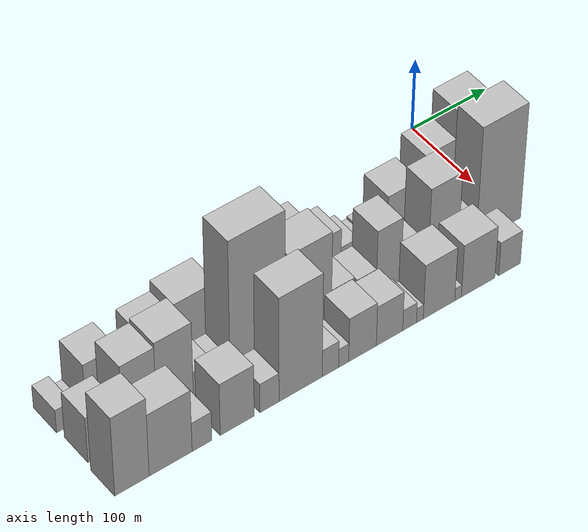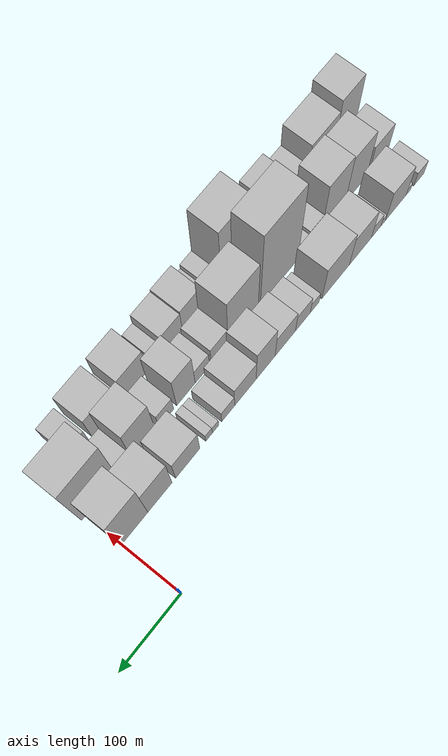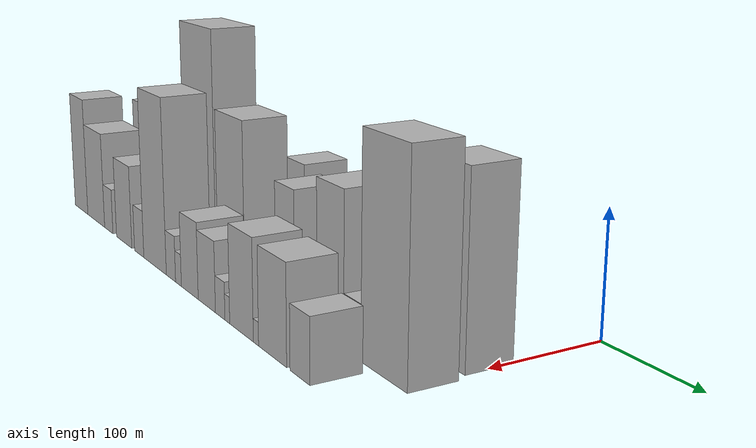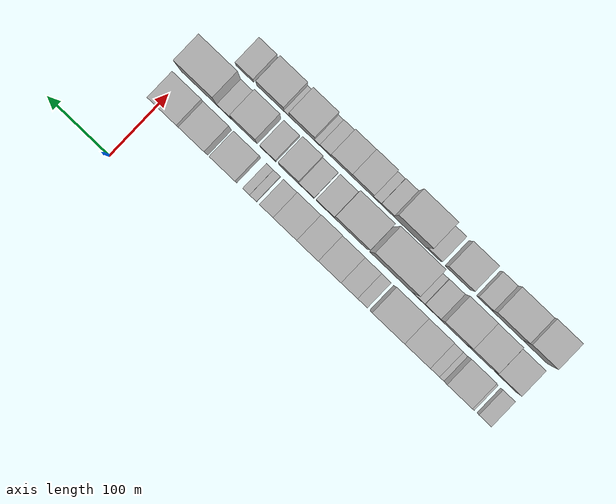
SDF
<sdf version="1.6">
 <world name="default">
  <model name="building_1">
   <static>1</static>
   <pose>100.0000 -526.1219 0 0.000000 0.000000 0.000000</pose>
   <link name="link">
    <pose>0 0 16.50 0 0 0</pose>
    <collision name="collision"><geometry><box><size>40.0000 19.7561 33.0000</size></box></geometry></collision>
    <visual name="visual">
     <cast_shadows>0</cast_shadows>
     <geometry><box><size>40.0000 19.7561 33.0000</size></box></geometry>
     <material>
      <script>
       <uri>model://HANNAS_wall/materials/scripts</uri>
       <uri>model://HANNAS_wall/materials/textures</uri>
       <name>vrc/HANNAS_wall</name>
      </script>
     </material>
    </visual>
   </link>
  </model>
  <model name="building_2">
   <static>1</static>
   <pose>100.0000 -505.8128 0 0.000000 0.000000 0.000000</pose>
   <link name="link">
    <pose>0 0 9.00 0 0 0</pose>
    <collision name="collision"><geometry><box><size>40.0000 8.8621 18.0000</size></box></geometry></collision>
    <visual name="visual">
     <cast_shadows>0</cast_shadows>
     <geometry><box><size>40.0000 8.8621 18.0000</size></box></geometry>
     <material>
      <script>
       <uri>model://HANNAS_wall/materials/scripts</uri>
       <uri>model://HANNAS_wall/materials/textures</uri>
       <name>vrc/HANNAS_wall</name>
      </script>
     </material>
    </visual>
   </link>
  </model>
  <model name="building_3">
   <static>1</static>
   <pose>100.0000 -481.4801 0 0.000000 0.000000 0.000000</pose>
   <link name="link">
    <pose>0 0 37.50 0 0 0</pose>
    <collision name="collision"><geometry><box><size>40.0000 39.8033 75.0000</size></box></geometry></collision>
    <visual name="visual">
     <cast_shadows>0</cast_shadows>
     <geometry><box><size>40.0000 39.8033 75.0000</size></box></geometry>
     <material>
      <script>
       <uri>model://HANNAS_wall/materials/scripts</uri>
       <uri>model://HANNAS_wall/materials/textures</uri>
       <name>vrc/HANNAS_wall</name>
      </script>
     </material>
    </visual>
   </link>
  </model>
  <model name="building_4">
   <static>1</static>
   <pose>100.0000 -457.4161 0 0.000000 0.000000 0.000000</pose>
   <link name="link">
    <pose>0 0 9.00 0 0 0</pose>
    <collision name="collision"><geometry><box><size>40.0000 8.3246 18.0000</size></box></geometry></collision>
    <visual name="visual">
     <cast_shadows>0</cast_shadows>
     <geometry><box><size>40.0000 8.3246 18.0000</size></box></geometry>
     <material>
      <script>
       <uri>model://HANNAS_wall/materials/scripts</uri>
       <uri>model://HANNAS_wall/materials/textures</uri>
       <name>vrc/HANNAS_wall</name>
      </script>
     </material>
    </visual>
   </link>
  </model>
  <model name="building_5">
   <static>1</static>
   <pose>100.0000 -444.1936 0 0.000000 0.000000 0.000000</pose>
   <link name="link">
    <pose>0 0 16.50 0 0 0</pose>
    <collision name="collision"><geometry><box><size>40.0000 18.1203 33.0000</size></box></geometry></collision>
    <visual name="visual">
     <cast_shadows>0</cast_shadows>
     <geometry><box><size>40.0000 18.1203 33.0000</size></box></geometry>
     <material>
      <script>
       <uri>model://HANNAS_wall/materials/scripts</uri>
       <uri>model://HANNAS_wall/materials/textures</uri>
       <name>vrc/HANNAS_wall</name>
      </script>
     </material>
    </visual>
   </link>
  </model>
  <model name="building_6">
   <static>1</static>
   <pose>100.0000 -414.6209 0 0.000000 0.000000 0.000000</pose>
   <link name="link">
    <pose>0 0 37.50 0 0 0</pose>
    <collision name="collision"><geometry><box><size>40.0000 41.0252 75.0000</size></box></geometry></collision>
    <visual name="visual">
     <cast_shadows>0</cast_shadows>
     <geometry><box><size>40.0000 41.0252 75.0000</size></box></geometry>
     <material>
      <script>
       <uri>model://HANNAS_wall/materials/scripts</uri>
       <uri>model://HANNAS_wall/materials/textures</uri>
       <name>vrc/HANNAS_wall</name>
      </script>
     </material>
    </visual>
   </link>
  </model>
  <model name="building_7">
   <static>1</static>
   <pose>100.0000 -368.7851 0 0.000000 0.000000 0.000000</pose>
   <link name="link">
    <pose>0 0 45.00 0 0 0</pose>
    <collision name="collision"><geometry><box><size>40.0000 50.6465 90.0000</size></box></geometry></collision>
    <visual name="visual">
     <cast_shadows>0</cast_shadows>
     <geometry><box><size>40.0000 50.6465 90.0000</size></box></geometry>
     <material>
      <script>
       <uri>model://HANNAS_wall/materials/scripts</uri>
       <uri>model://HANNAS_wall/materials/textures</uri>
       <name>vrc/HANNAS_wall</name>
      </script>
     </material>
    </visual>
   </link>
  </model>
  <model name="building_8">
   <static>1</static>
   <pose>100.0000 -330.3271 0 0.000000 0.000000 0.000000</pose>
   <link name="link">
    <pose>0 0 15.00 0 0 0</pose>
    <collision name="collision"><geometry><box><size>40.0000 16.2695 30.0000</size></box></geometry></collision>
    <visual name="visual">
     <cast_shadows>0</cast_shadows>
     <geometry><box><size>40.0000 16.2695 30.0000</size></box></geometry>
     <material>
      <script>
       <uri>model://HANNAS_wall/materials/scripts</uri>
       <uri>model://HANNAS_wall/materials/textures</uri>
       <name>vrc/HANNAS_wall</name>
      </script>
     </material>
    </visual>
   </link>
  </model>
  <model name="building_9">
   <static>1</static>
   <pose>100.0000 -308.9415 0 0.000000 0.000000 0.000000</pose>
   <link name="link">
    <pose>0 0 25.50 0 0 0</pose>
    <collision name="collision"><geometry><box><size>40.0000 26.5016 51.0000</size></box></geometry></collision>
    <visual name="visual">
     <cast_shadows>0</cast_shadows>
     <geometry><box><size>40.0000 26.5016 51.0000</size></box></geometry>
     <material>
      <script>
       <uri>model://HANNAS_wall/materials/scripts</uri>
       <uri>model://HANNAS_wall/materials/textures</uri>
       <name>vrc/HANNAS_wall</name>
      </script>
     </material>
    </visual>
   </link>
  </model>
  <model name="building_10">
   <static>1</static>
   <pose>100.0000 -277.5802 0 0.000000 0.000000 0.000000</pose>
   <link name="link">
    <pose>0 0 31.50 0 0 0</pose>
    <collision name="collision"><geometry><box><size>40.0000 36.2212 63.0000</size></box></geometry></collision>
    <visual name="visual">
     <cast_shadows>0</cast_shadows>
     <geometry><box><size>40.0000 36.2212 63.0000</size></box></geometry>
     <material>
      <script>
       <uri>model://HANNAS_wall/materials/scripts</uri>
       <uri>model://HANNAS_wall/materials/textures</uri>
       <name>vrc/HANNAS_wall</name>
      </script>
     </material>
    </visual>
   </link>
  </model>
  <model name="building_11">
   <static>1</static>
   <pose>100.0000 -242.7099 0 0.000000 0.000000 0.000000</pose>
   <link name="link">
    <pose>0 0 48.00 0 0 0</pose>
    <collision name="collision"><geometry><box><size>40.0000 33.5194 96.0000</size></box></geometry></collision>
    <visual name="visual">
     <cast_shadows>0</cast_shadows>
     <geometry><box><size>40.0000 33.5194 96.0000</size></box></geometry>
     <material>
      <script>
       <uri>model://HANNAS_wall/materials/scripts</uri>
       <uri>model://HANNAS_wall/materials/textures</uri>
       <name>vrc/HANNAS_wall</name>
      </script>
     </material>
    </visual>
   </link>
  </model>
  <model name="building_12">
   <static>1</static>
   <pose>100.0000 -207.3057 0 0.000000 0.000000 0.000000</pose>
   <link name="link">
    <pose>0 0 33.00 0 0 0</pose>
    <collision name="collision"><geometry><box><size>40.0000 37.2890 66.0000</size></box></geometry></collision>
    <visual name="visual">
     <cast_shadows>0</cast_shadows>
     <geometry><box><size>40.0000 37.2890 66.0000</size></box></geometry>
     <material>
      <script>
       <uri>model://HANNAS_wall/materials/scripts</uri>
       <uri>model://HANNAS_wall/materials/textures</uri>
       <name>vrc/HANNAS_wall</name>
      </script>
     </material>
    </visual>
   </link>
  </model>
  <model name="building_13">
   <static>1</static>
   <pose>100.0000 -177.5530 0 0.000000 0.000000 0.000000</pose>
   <link name="link">
    <pose>0 0 19.50 0 0 0</pose>
    <collision name="collision"><geometry><box><size>40.0000 22.2164 39.0000</size></box></geometry></collision>
    <visual name="visual">
     <cast_shadows>0</cast_shadows>
     <geometry><box><size>40.0000 22.2164 39.0000</size></box></geometry>
     <material>
      <script>
       <uri>model://HANNAS_wall/materials/scripts</uri>
       <uri>model://HANNAS_wall/materials/textures</uri>
       <name>vrc/HANNAS_wall</name>
      </script>
     </material>
    </visual>
   </link>
  </model>
  <model name="building_14">
   <static>1</static>
   <pose>100.0000 -155.9474 0 0.000000 0.000000 0.000000</pose>
   <link name="link">
    <pose>0 0 12.00 0 0 0</pose>
    <collision name="collision"><geometry><box><size>40.0000 10.9948 24.0000</size></box></geometry></collision>
    <visual name="visual">
     <cast_shadows>0</cast_shadows>
     <geometry><box><size>40.0000 10.9948 24.0000</size></box></geometry>
     <material>
      <script>
       <uri>model://HANNAS_wall/materials/scripts</uri>
       <uri>model://HANNAS_wall/materials/textures</uri>
       <name>vrc/HANNAS_wall</name>
      </script>
     </material>
    </visual>
   </link>
  </model>
  <model name="building_15">
   <static>1</static>
   <pose>100.0000 -144.8845 0 0.000000 0.000000 0.000000</pose>
   <link name="link">
    <pose>0 0 13.50 0 0 0</pose>
    <collision name="collision"><geometry><box><size>40.0000 11.1311 27.0000</size></box></geometry></collision>
    <visual name="visual">
     <cast_shadows>0</cast_shadows>
     <geometry><box><size>40.0000 11.1311 27.0000</size></box></geometry>
     <material>
      <script>
       <uri>model://HANNAS_wall/materials/scripts</uri>
       <uri>model://HANNAS_wall/materials/textures</uri>
       <name>vrc/HANNAS_wall</name>
      </script>
     </material>
    </visual>
   </link>
  </model>
  <model name="building_16">
   <static>1</static>
   <pose>100.0000 -108.9709 0 0.000000 0.000000 0.000000</pose>
   <link name="link">
    <pose>0 0 37.50 0 0 0</pose>
    <collision name="collision"><geometry><box><size>40.0000 40.6960 75.0000</size></box></geometry></collision>
    <visual name="visual">
     <cast_shadows>0</cast_shadows>
     <geometry><box><size>40.0000 40.6960 75.0000</size></box></geometry>
     <material>
      <script>
       <uri>model://HANNAS_wall/materials/scripts</uri>
       <uri>model://HANNAS_wall/materials/textures</uri>
       <name>vrc/HANNAS_wall</name>
      </script>
     </material>
    </visual>
   </link>
  </model>
  <model name="building_17">
   <static>1</static>
   <pose>100.0000 -62.7617 0 0.000000 0.000000 0.000000</pose>
   <link name="link">
    <pose>0 0 52.50 0 0 0</pose>
    <collision name="collision"><geometry><box><size>40.0000 39.7224 105.0000</size></box></geometry></collision>
    <visual name="visual">
     <cast_shadows>0</cast_shadows>
     <geometry><box><size>40.0000 39.7224 105.0000</size></box></geometry>
     <material>
      <script>
       <uri>model://HANNAS_wall/materials/scripts</uri>
       <uri>model://HANNAS_wall/materials/textures</uri>
       <name>vrc/HANNAS_wall</name>
      </script>
     </material>
    </visual>
   </link>
  </model>
  <model name="building_18">
   <static>1</static>
   <pose>100.0000 -20.6462 0 0.000000 0.000000 0.000000</pose>
   <link name="link">
    <pose>0 0 72.00 0 0 0</pose>
    <collision name="collision"><geometry><box><size>40.0000 44.5086 144.0000</size></box></geometry></collision>
    <visual name="visual">
     <cast_shadows>0</cast_shadows>
     <geometry><box><size>40.0000 44.5086 144.0000</size></box></geometry>
     <material>
      <script>
       <uri>model://HANNAS_wall/materials/scripts</uri>
       <uri>model://HANNAS_wall/materials/textures</uri>
       <name>vrc/HANNAS_wall</name>
      </script>
     </material>
    </visual>
   </link>
  </model>
  <model name="building_34">
   <static>1</static>
   <pose>149.0000 -514.7943 0 0.000000 0.000000 0.000000</pose>
   <link name="link">
    <pose>0 0 33.00 0 0 0</pose>
    <collision name="collision"><geometry><box><size>40.0000 36.4115 66.0000</size></box></geometry></collision>
    <visual name="visual">
     <cast_shadows>0</cast_shadows>
     <geometry><box><size>40.0000 36.4115 66.0000</size></box></geometry>
     <material>
      <script>
       <uri>model://HANNAS_wall/materials/scripts</uri>
       <uri>model://HANNAS_wall/materials/textures</uri>
       <name>vrc/HANNAS_wall</name>
      </script>
     </material>
    </visual>
   </link>
  </model>
  <model name="building_35">
   <static>1</static>
   <pose>149.0000 -471.6431 0 0.000000 0.000000 0.000000</pose>
   <link name="link">
    <pose>0 0 55.50 0 0 0</pose>
    <collision name="collision"><geometry><box><size>40.0000 39.8908 111.0000</size></box></geometry></collision>
    <visual name="visual">
     <cast_shadows>0</cast_shadows>
     <geometry><box><size>40.0000 39.8908 111.0000</size></box></geometry>
     <material>
      <script>
       <uri>model://HANNAS_wall/materials/scripts</uri>
       <uri>model://HANNAS_wall/materials/textures</uri>
       <name>vrc/HANNAS_wall</name>
      </script>
     </material>
    </visual>
   </link>
  </model>
  <model name="building_36">
   <static>1</static>
   <pose>149.0000 -429.7863 0 0.000000 0.000000 0.000000</pose>
   <link name="link">
    <pose>0 0 58.50 0 0 0</pose>
    <collision name="collision"><geometry><box><size>40.0000 43.8228 117.0000</size></box></geometry></collision>
    <visual name="visual">
     <cast_shadows>0</cast_shadows>
     <geometry><box><size>40.0000 43.8228 117.0000</size></box></geometry>
     <material>
      <script>
       <uri>model://HANNAS_wall/materials/scripts</uri>
       <uri>model://HANNAS_wall/materials/textures</uri>
       <name>vrc/HANNAS_wall</name>
      </script>
     </material>
    </visual>
   </link>
  </model>
  <model name="building_37">
   <static>1</static>
   <pose>149.0000 -395.3865 0 0.000000 0.000000 0.000000</pose>
   <link name="link">
    <pose>0 0 22.50 0 0 0</pose>
    <collision name="collision"><geometry><box><size>40.0000 24.9768 45.0000</size></box></geometry></collision>
    <visual name="visual">
     <cast_shadows>0</cast_shadows>
     <geometry><box><size>40.0000 24.9768 45.0000</size></box></geometry>
     <material>
      <script>
       <uri>model://HANNAS_wall/materials/scripts</uri>
       <uri>model://HANNAS_wall/materials/textures</uri>
       <name>vrc/HANNAS_wall</name>
      </script>
     </material>
    </visual>
   </link>
  </model>
  <model name="building_38">
   <static>1</static>
   <pose>149.0000 -373.2390 0 0.000000 0.000000 0.000000</pose>
   <link name="link">
    <pose>0 0 18.00 0 0 0</pose>
    <collision name="collision"><geometry><box><size>40.0000 19.3182 36.0000</size></box></geometry></collision>
    <visual name="visual">
     <cast_shadows>0</cast_shadows>
     <geometry><box><size>40.0000 19.3182 36.0000</size></box></geometry>
     <material>
      <script>
       <uri>model://HANNAS_wall/materials/scripts</uri>
       <uri>model://HANNAS_wall/materials/textures</uri>
       <name>vrc/HANNAS_wall</name>
      </script>
     </material>
    </visual>
   </link>
  </model>
  <model name="building_39">
   <static>1</static>
   <pose>149.0000 -329.8349 0 0.000000 0.000000 0.000000</pose>
   <link name="link">
    <pose>0 0 100.50 0 0 0</pose>
    <collision name="collision"><geometry><box><size>40.0000 67.4900 201.0000</size></box></geometry></collision>
    <visual name="visual">
     <cast_shadows>0</cast_shadows>
     <geometry><box><size>40.0000 67.4900 201.0000</size></box></geometry>
     <material>
      <script>
       <uri>model://HANNAS_wall/materials/scripts</uri>
       <uri>model://HANNAS_wall/materials/textures</uri>
       <name>vrc/HANNAS_wall</name>
      </script>
     </material>
    </visual>
   </link>
  </model>
  <model name="building_40">
   <static>1</static>
   <pose>149.0000 -265.3873 0 0.000000 0.000000 0.000000</pose>
   <link name="link">
    <pose>0 0 67.50 0 0 0</pose>
    <collision name="collision"><geometry><box><size>40.0000 53.4052 135.0000</size></box></geometry></collision>
    <visual name="visual">
     <cast_shadows>0</cast_shadows>
     <geometry><box><size>40.0000 53.4052 135.0000</size></box></geometry>
     <material>
      <script>
       <uri>model://HANNAS_wall/materials/scripts</uri>
       <uri>model://HANNAS_wall/materials/textures</uri>
       <name>vrc/HANNAS_wall</name>
      </script>
     </material>
    </visual>
   </link>
  </model>
  <model name="building_41">
   <static>1</static>
   <pose>149.0000 -224.1973 0 0.000000 0.000000 0.000000</pose>
   <link name="link">
    <pose>0 0 25.50 0 0 0</pose>
    <collision name="collision"><geometry><box><size>40.0000 28.9750 51.0000</size></box></geometry></collision>
    <visual name="visual">
     <cast_shadows>0</cast_shadows>
     <geometry><box><size>40.0000 28.9750 51.0000</size></box></geometry>
     <material>
      <script>
       <uri>model://HANNAS_wall/materials/scripts</uri>
       <uri>model://HANNAS_wall/materials/textures</uri>
       <name>vrc/HANNAS_wall</name>
      </script>
     </material>
    </visual>
   </link>
  </model>
  <model name="building_42">
   <static>1</static>
   <pose>149.0000 -194.3258 0 0.000000 0.000000 0.000000</pose>
   <link name="link">
    <pose>0 0 22.50 0 0 0</pose>
    <collision name="collision"><geometry><box><size>40.0000 24.7681 45.0000</size></box></geometry></collision>
    <visual name="visual">
     <cast_shadows>0</cast_shadows>
     <geometry><box><size>40.0000 24.7681 45.0000</size></box></geometry>
     <material>
      <script>
       <uri>model://HANNAS_wall/materials/scripts</uri>
       <uri>model://HANNAS_wall/materials/textures</uri>
       <name>vrc/HANNAS_wall</name>
      </script>
     </material>
    </visual>
   </link>
  </model>
  <model name="building_43">
   <static>1</static>
   <pose>149.0000 -166.0738 0 0.000000 0.000000 0.000000</pose>
   <link name="link">
    <pose>0 0 49.50 0 0 0</pose>
    <collision name="collision"><geometry><box><size>40.0000 31.7359 99.0000</size></box></geometry></collision>
    <visual name="visual">
     <cast_shadows>0</cast_shadows>
     <geometry><box><size>40.0000 31.7359 99.0000</size></box></geometry>
     <material>
      <script>
       <uri>model://HANNAS_wall/materials/scripts</uri>
       <uri>model://HANNAS_wall/materials/textures</uri>
       <name>vrc/HANNAS_wall</name>
      </script>
     </material>
    </visual>
   </link>
  </model>
  <model name="building_44">
   <static>1</static>
   <pose>149.0000 -132.6454 0 0.000000 0.000000 0.000000</pose>
   <link name="link">
    <pose>0 0 24.00 0 0 0</pose>
    <collision name="collision"><geometry><box><size>40.0000 25.1210 48.0000</size></box></geometry></collision>
    <visual name="visual">
     <cast_shadows>0</cast_shadows>
     <geometry><box><size>40.0000 25.1210 48.0000</size></box></geometry>
     <material>
      <script>
       <uri>model://HANNAS_wall/materials/scripts</uri>
       <uri>model://HANNAS_wall/materials/textures</uri>
       <name>vrc/HANNAS_wall</name>
      </script>
     </material>
    </visual>
   </link>
  </model>
  <model name="building_45">
   <static>1</static>
   <pose>149.0000 -95.3464 0 0.000000 0.000000 0.000000</pose>
   <link name="link">
    <pose>0 0 58.50 0 0 0</pose>
    <collision name="collision"><geometry><box><size>40.0000 39.4770 117.0000</size></box></geometry></collision>
    <visual name="visual">
     <cast_shadows>0</cast_shadows>
     <geometry><box><size>40.0000 39.4770 117.0000</size></box></geometry>
     <material>
      <script>
       <uri>model://HANNAS_wall/materials/scripts</uri>
       <uri>model://HANNAS_wall/materials/textures</uri>
       <name>vrc/HANNAS_wall</name>
      </script>
     </material>
    </visual>
   </link>
  </model>
  <model name="building_46">
   <static>1</static>
   <pose>149.0000 -63.7286 0 0.000000 0.000000 0.000000</pose>
   <link name="link">
    <pose>0 0 21.00 0 0 0</pose>
    <collision name="collision"><geometry><box><size>40.0000 23.7586 42.0000</size></box></geometry></collision>
    <visual name="visual">
     <cast_shadows>0</cast_shadows>
     <geometry><box><size>40.0000 23.7586 42.0000</size></box></geometry>
     <material>
      <script>
       <uri>model://HANNAS_wall/materials/scripts</uri>
       <uri>model://HANNAS_wall/materials/textures</uri>
       <name>vrc/HANNAS_wall</name>
      </script>
     </material>
    </visual>
   </link>
  </model>
  <model name="building_47">
   <static>1</static>
   <pose>149.0000 -22.4297 0 0.000000 0.000000 0.000000</pose>
   <link name="link">
    <pose>0 0 82.50 0 0 0</pose>
    <collision name="collision"><geometry><box><size>40.0000 58.8392 165.0000</size></box></geometry></collision>
    <visual name="visual">
     <cast_shadows>0</cast_shadows>
     <geometry><box><size>40.0000 58.8392 165.0000</size></box></geometry>
     <material>
      <script>
       <uri>model://HANNAS_wall/materials/scripts</uri>
       <uri>model://HANNAS_wall/materials/textures</uri>
       <name>vrc/HANNAS_wall</name>
      </script>
     </material>
    </visual>
   </link>
  </model>
  <model name="building_63">
   <static>1</static>
   <pose>198.0000 -515.8757 0 0.000000 0.000000 0.000000</pose>
   <link name="link">
    <pose>0 0 57.00 0 0 0</pose>
    <collision name="collision"><geometry><box><size>40.0000 40.2486 114.0000</size></box></geometry></collision>
    <visual name="visual">
     <cast_shadows>0</cast_shadows>
     <geometry><box><size>40.0000 40.2486 114.0000</size></box></geometry>
     <material>
      <script>
       <uri>model://HANNAS_wall/materials/scripts</uri>
       <uri>model://HANNAS_wall/materials/textures</uri>
       <name>vrc/HANNAS_wall</name>
      </script>
     </material>
    </visual>
   </link>
  </model>
  <model name="building_64">
   <static>1</static>
   <pose>198.0000 -470.4713 0 0.000000 0.000000 0.000000</pose>
   <link name="link">
    <pose>0 0 45.00 0 0 0</pose>
    <collision name="collision"><geometry><box><size>40.0000 50.5603 90.0000</size></box></geometry></collision>
    <visual name="visual">
     <cast_shadows>0</cast_shadows>
     <geometry><box><size>40.0000 50.5603 90.0000</size></box></geometry>
     <material>
      <script>
       <uri>model://HANNAS_wall/materials/scripts</uri>
       <uri>model://HANNAS_wall/materials/textures</uri>
       <name>vrc/HANNAS_wall</name>
      </script>
     </material>
    </visual>
   </link>
  </model>
  <model name="building_65">
   <static>1</static>
   <pose>198.0000 -433.4151 0 0.000000 0.000000 0.000000</pose>
   <link name="link">
    <pose>0 0 21.00 0 0 0</pose>
    <collision name="collision"><geometry><box><size>40.0000 23.5520 42.0000</size></box></geometry></collision>
    <visual name="visual">
     <cast_shadows>0</cast_shadows>
     <geometry><box><size>40.0000 23.5520 42.0000</size></box></geometry>
     <material>
      <script>
       <uri>model://HANNAS_wall/materials/scripts</uri>
       <uri>model://HANNAS_wall/materials/textures</uri>
       <name>vrc/HANNAS_wall</name>
      </script>
     </material>
    </visual>
   </link>
  </model>
  <model name="building_66">
   <static>1</static>
   <pose>198.0000 -391.2242 0 0.000000 0.000000 0.000000</pose>
   <link name="link">
    <pose>0 0 37.50 0 0 0</pose>
    <collision name="collision"><geometry><box><size>40.0000 40.8298 75.0000</size></box></geometry></collision>
    <visual name="visual">
     <cast_shadows>0</cast_shadows>
     <geometry><box><size>40.0000 40.8298 75.0000</size></box></geometry>
     <material>
      <script>
       <uri>model://HANNAS_wall/materials/scripts</uri>
       <uri>model://HANNAS_wall/materials/textures</uri>
       <name>vrc/HANNAS_wall</name>
      </script>
     </material>
    </visual>
   </link>
  </model>
  <model name="building_67">
   <static>1</static>
   <pose>198.0000 -352.2111 0 0.000000 0.000000 0.000000</pose>
   <link name="link">
    <pose>0 0 21.00 0 0 0</pose>
    <collision name="collision"><geometry><box><size>40.0000 23.1963 42.0000</size></box></geometry></collision>
    <visual name="visual">
     <cast_shadows>0</cast_shadows>
     <geometry><box><size>40.0000 23.1963 42.0000</size></box></geometry>
     <material>
      <script>
       <uri>model://HANNAS_wall/materials/scripts</uri>
       <uri>model://HANNAS_wall/materials/textures</uri>
       <name>vrc/HANNAS_wall</name>
      </script>
     </material>
    </visual>
   </link>
  </model>
  <model name="building_68">
   <static>1</static>
   <pose>198.0000 -314.0853 0 0.000000 0.000000 0.000000</pose>
   <link name="link">
    <pose>0 0 75.00 0 0 0</pose>
    <collision name="collision"><geometry><box><size>40.0000 53.0554 150.0000</size></box></geometry></collision>
    <visual name="visual">
     <cast_shadows>0</cast_shadows>
     <geometry><box><size>40.0000 53.0554 150.0000</size></box></geometry>
     <material>
      <script>
       <uri>model://HANNAS_wall/materials/scripts</uri>
       <uri>model://HANNAS_wall/materials/textures</uri>
       <name>vrc/HANNAS_wall</name>
      </script>
     </material>
    </visual>
   </link>
  </model>
  <model name="building_69">
   <static>1</static>
   <pose>198.0000 -277.3604 0 0.000000 0.000000 0.000000</pose>
   <link name="link">
    <pose>0 0 19.50 0 0 0</pose>
    <collision name="collision"><geometry><box><size>40.0000 20.3945 39.0000</size></box></geometry></collision>
    <visual name="visual">
     <cast_shadows>0</cast_shadows>
     <geometry><box><size>40.0000 20.3945 39.0000</size></box></geometry>
     <material>
      <script>
       <uri>model://HANNAS_wall/materials/scripts</uri>
       <uri>model://HANNAS_wall/materials/textures</uri>
       <name>vrc/HANNAS_wall</name>
      </script>
     </material>
    </visual>
   </link>
  </model>
  <model name="building_70">
   <static>1</static>
   <pose>198.0000 -260.9088 0 0.000000 0.000000 0.000000</pose>
   <link name="link">
    <pose>0 0 13.50 0 0 0</pose>
    <collision name="collision"><geometry><box><size>40.0000 12.5088 27.0000</size></box></geometry></collision>
    <visual name="visual">
     <cast_shadows>0</cast_shadows>
     <geometry><box><size>40.0000 12.5088 27.0000</size></box></geometry>
     <material>
      <script>
       <uri>model://HANNAS_wall/materials/scripts</uri>
       <uri>model://HANNAS_wall/materials/textures</uri>
       <name>vrc/HANNAS_wall</name>
      </script>
     </material>
    </visual>
   </link>
  </model>
  <model name="building_71">
   <static>1</static>
   <pose>198.0000 -237.2912 0 0.000000 0.000000 0.000000</pose>
   <link name="link">
    <pose>0 0 31.50 0 0 0</pose>
    <collision name="collision"><geometry><box><size>40.0000 34.7263 63.0000</size></box></geometry></collision>
    <visual name="visual">
     <cast_shadows>0</cast_shadows>
     <geometry><box><size>40.0000 34.7263 63.0000</size></box></geometry>
     <material>
      <script>
       <uri>model://HANNAS_wall/materials/scripts</uri>
       <uri>model://HANNAS_wall/materials/textures</uri>
       <name>vrc/HANNAS_wall</name>
      </script>
     </material>
    </visual>
   </link>
  </model>
  <model name="building_72">
   <static>1</static>
   <pose>198.0000 -203.2256 0 0.000000 0.000000 0.000000</pose>
   <link name="link">
    <pose>0 0 28.50 0 0 0</pose>
    <collision name="collision"><geometry><box><size>40.0000 33.4049 57.0000</size></box></geometry></collision>
    <visual name="visual">
     <cast_shadows>0</cast_shadows>
     <geometry><box><size>40.0000 33.4049 57.0000</size></box></geometry>
     <material>
      <script>
       <uri>model://HANNAS_wall/materials/scripts</uri>
       <uri>model://HANNAS_wall/materials/textures</uri>
       <name>vrc/HANNAS_wall</name>
      </script>
     </material>
    </visual>
   </link>
  </model>
  <model name="building_73">
   <static>1</static>
   <pose>198.0000 -177.7547 0 0.000000 0.000000 0.000000</pose>
   <link name="link">
    <pose>0 0 15.00 0 0 0</pose>
    <collision name="collision"><geometry><box><size>40.0000 17.5370 30.0000</size></box></geometry></collision>
    <visual name="visual">
     <cast_shadows>0</cast_shadows>
     <geometry><box><size>40.0000 17.5370 30.0000</size></box></geometry>
     <material>
      <script>
       <uri>model://HANNAS_wall/materials/scripts</uri>
       <uri>model://HANNAS_wall/materials/textures</uri>
       <name>vrc/HANNAS_wall</name>
      </script>
     </material>
    </visual>
   </link>
  </model>
  <model name="building_74">
   <static>1</static>
   <pose>198.0000 -164.6777 0 0.000000 0.000000 0.000000</pose>
   <link name="link">
    <pose>0 0 10.50 0 0 0</pose>
    <collision name="collision"><geometry><box><size>40.0000 8.6170 21.0000</size></box></geometry></collision>
    <visual name="visual">
     <cast_shadows>0</cast_shadows>
     <geometry><box><size>40.0000 8.6170 21.0000</size></box></geometry>
     <material>
      <script>
       <uri>model://HANNAS_wall/materials/scripts</uri>
       <uri>model://HANNAS_wall/materials/textures</uri>
       <name>vrc/HANNAS_wall</name>
      </script>
     </material>
    </visual>
   </link>
  </model>
  <model name="building_75">
   <static>1</static>
   <pose>198.0000 -140.0531 0 0.000000 0.000000 0.000000</pose>
   <link name="link">
    <pose>0 0 39.00 0 0 0</pose>
    <collision name="collision"><geometry><box><size>40.0000 40.6323 78.0000</size></box></geometry></collision>
    <visual name="visual">
     <cast_shadows>0</cast_shadows>
     <geometry><box><size>40.0000 40.6323 78.0000</size></box></geometry>
     <material>
      <script>
       <uri>model://HANNAS_wall/materials/scripts</uri>
       <uri>model://HANNAS_wall/materials/textures</uri>
       <name>vrc/HANNAS_wall</name>
      </script>
     </material>
    </visual>
   </link>
  </model>
  <model name="building_76">
   <static>1</static>
   <pose>198.0000 -115.4726 0 0.000000 0.000000 0.000000</pose>
   <link name="link">
    <pose>0 0 9.00 0 0 0</pose>
    <collision name="collision"><geometry><box><size>40.0000 8.5287 18.0000</size></box></geometry></collision>
    <visual name="visual">
     <cast_shadows>0</cast_shadows>
     <geometry><box><size>40.0000 8.5287 18.0000</size></box></geometry>
     <material>
      <script>
       <uri>model://HANNAS_wall/materials/scripts</uri>
       <uri>model://HANNAS_wall/materials/textures</uri>
       <name>vrc/HANNAS_wall</name>
      </script>
     </material>
    </visual>
   </link>
  </model>
  <model name="building_77">
   <static>1</static>
   <pose>198.0000 -89.4101 0 0.000000 0.000000 0.000000</pose>
   <link name="link">
    <pose>0 0 37.50 0 0 0</pose>
    <collision name="collision"><geometry><box><size>40.0000 43.5962 75.0000</size></box></geometry></collision>
    <visual name="visual">
     <cast_shadows>0</cast_shadows>
     <geometry><box><size>40.0000 43.5962 75.0000</size></box></geometry>
     <material>
      <script>
       <uri>model://HANNAS_wall/materials/scripts</uri>
       <uri>model://HANNAS_wall/materials/textures</uri>
       <name>vrc/HANNAS_wall</name>
      </script>
     </material>
    </visual>
   </link>
  </model>
  <model name="building_78">
   <static>1</static>
   <pose>198.0000 -48.3830 0 0.000000 0.000000 0.000000</pose>
   <link name="link">
    <pose>0 0 24.00 0 0 0</pose>
    <collision name="collision"><geometry><box><size>40.0000 28.4581 48.0000</size></box></geometry></collision>
    <visual name="visual">
     <cast_shadows>0</cast_shadows>
     <geometry><box><size>40.0000 28.4581 48.0000</size></box></geometry>
     <material>
      <script>
       <uri>model://HANNAS_wall/materials/scripts</uri>
       <uri>model://HANNAS_wall/materials/textures</uri>
       <name>vrc/HANNAS_wall</name>
      </script>
     </material>
    </visual>
   </link>
  </model>
 </world>
</sdf>
